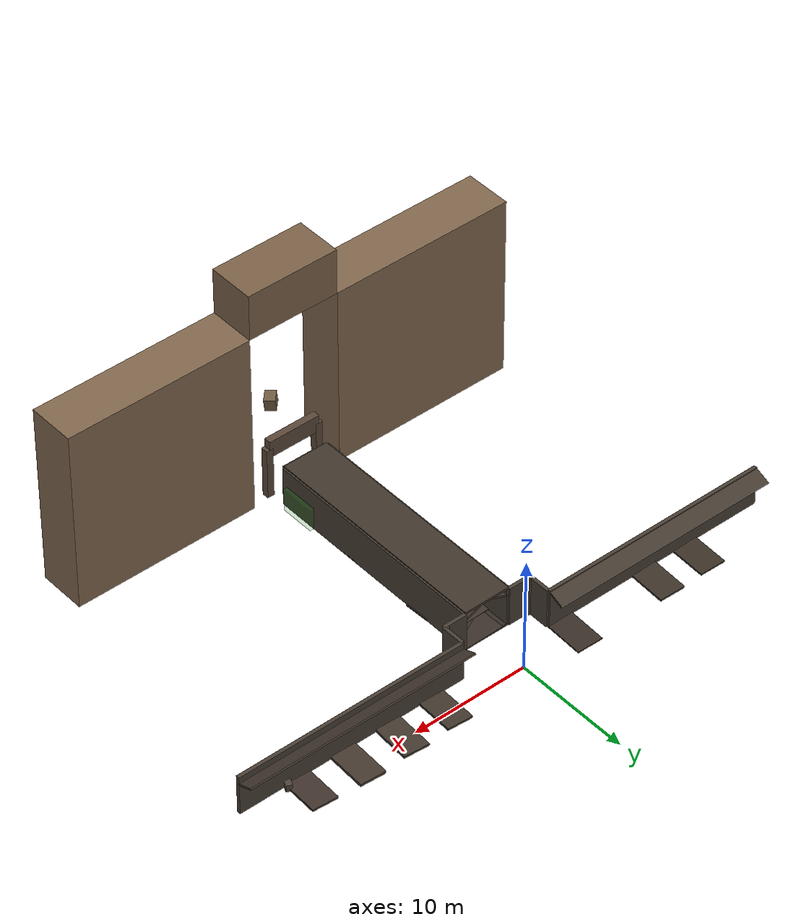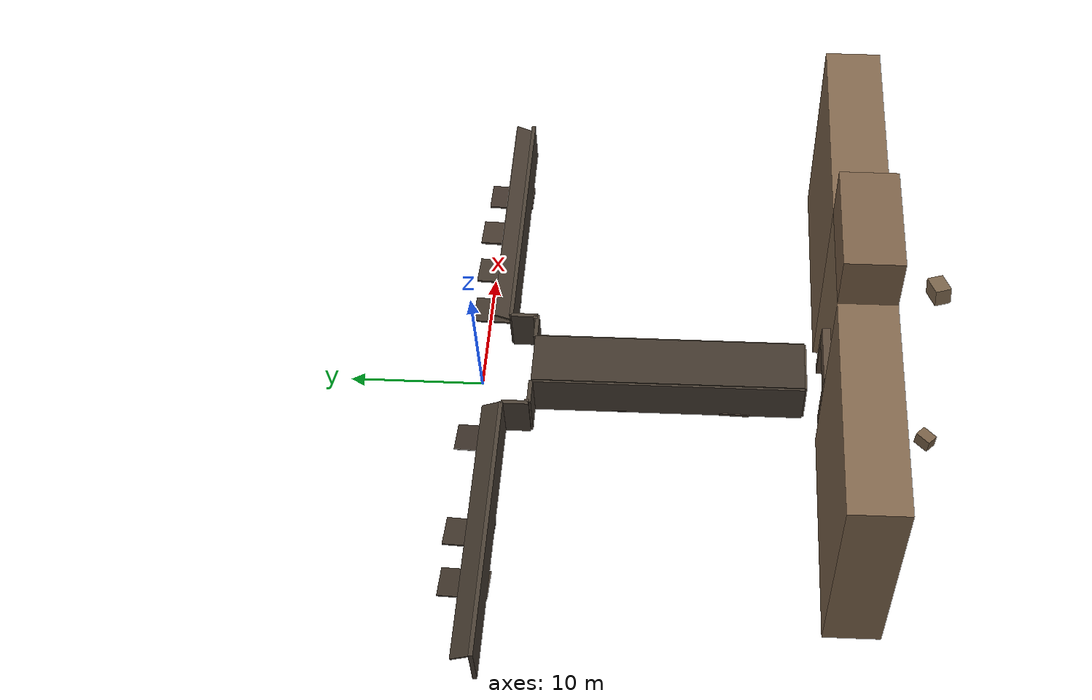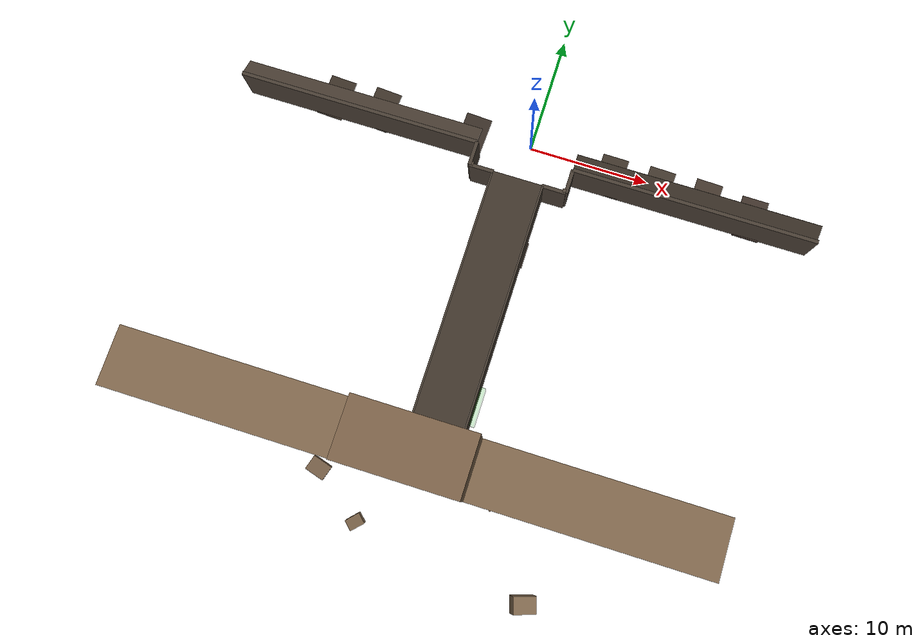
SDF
<sdf version="1.8">
 <world name="default">
  <model name="cliff_s_left">
   <static>true</static>
   <pose>-12 -27 8 0 0 0</pose>
   <link name="l">
    <collision name="c"><geometry><box><size>16 4 16</size></box></geometry></collision>
    <visual name="v">
     <geometry><box><size>16 4 16</size></box></geometry>
     <material><ambient>0.50 0.40 0.30 1</ambient><diffuse>0.50 0.40 0.30 1</diffuse></material>
    </visual>
   </link>
  </model>
  <model name="cliff_s_right">
   <static>true</static>
   <pose>12 -27 8 0 0 0</pose>
   <link name="l">
    <collision name="c"><geometry><box><size>16 4 16</size></box></geometry></collision>
    <visual name="v">
     <geometry><box><size>16 4 16</size></box></geometry>
     <material><ambient>0.50 0.40 0.30 1</ambient><diffuse>0.50 0.40 0.30 1</diffuse></material>
    </visual>
   </link>
  </model>
  <model name="cliff_s_top">
   <static>true</static>
   <pose>0 -27 18 0 0 0</pose>
   <link name="l">
    <collision name="c"><geometry><box><size>8 4 4</size></box></geometry></collision>
    <visual name="v">
     <geometry><box><size>8 4 4</size></box></geometry>
     <material><ambient>0.48 0.38 0.28 1</ambient><diffuse>0.48 0.38 0.28 1</diffuse></material>
    </visual>
   </link>
  </model>
  <model name="portal_lintel">
   <static>true</static>
   <pose>0 -25.5 4.5 0 0 0</pose>
   <link name="l">
    <collision name="c"><geometry><box><size>4.6 0.6 1.5</size></box></geometry></collision>
    <visual name="v">
     <geometry><box><size>4.6 0.6 1.5</size></box></geometry>
     <material><ambient>0.35 0.28 0.22 1</ambient><diffuse>0.35 0.28 0.22 1</diffuse></material>
    </visual>
   </link>
  </model>
  <model name="portal_pillar_l">
   <static>true</static>
   <pose>-2.3 -25.5 2.25 0 0 0</pose>
   <link name="l">
    <collision name="c"><geometry><box><size>0.6 0.6 4.5</size></box></geometry></collision>
    <visual name="v">
     <geometry><box><size>0.6 0.6 4.5</size></box></geometry>
     <material><ambient>0.35 0.28 0.22 1</ambient><diffuse>0.35 0.28 0.22 1</diffuse></material>
    </visual>
   </link>
  </model>
  <model name="portal_pillar_r">
   <static>true</static>
   <pose>2.3 -25.5 2.25 0 0 0</pose>
   <link name="l">
    <collision name="c"><geometry><box><size>0.6 0.6 4.5</size></box></geometry></collision>
    <visual name="v">
     <geometry><box><size>0.6 0.6 4.5</size></box></geometry>
     <material><ambient>0.35 0.28 0.22 1</ambient><diffuse>0.35 0.28 0.22 1</diffuse></material>
    </visual>
   </link>
  </model>
  <model name="boulder_1">
   <static>true</static>
   <pose>6 -28 0.8 0.2 0 0.5</pose>
   <link name="l">
    <collision name="c"><geometry><box><size>2.0 1.5 1.6</size></box></geometry></collision>
    <visual name="v">
     <geometry><box><size>2.0 1.5 1.6</size></box></geometry>
     <material><ambient>0.48 0.39 0.29 1</ambient><diffuse>0.48 0.39 0.29 1</diffuse></material>
    </visual>
   </link>
  </model>
  <model name="boulder_2">
   <static>true</static>
   <pose>-8 -30 0.6 0 0.15 -0.3</pose>
   <link name="l">
    <collision name="c"><geometry><box><size>1.6 1.2 1.2</size></box></geometry></collision>
    <visual name="v">
     <geometry><box><size>1.6 1.2 1.2</size></box></geometry>
     <material><ambient>0.45 0.36 0.27 1</ambient><diffuse>0.45 0.36 0.27 1</diffuse></material>
    </visual>
   </link>
  </model>
  <model name="boulder_3">
   <static>true</static>
   <pose>-4 -33 0.5 0.1 0 0.8</pose>
   <link name="l">
    <collision name="c"><geometry><box><size>1.2 0.9 1.0</size></box></geometry></collision>
    <visual name="v">
     <geometry><box><size>1.2 0.9 1.0</size></box></geometry>
     <material><ambient>0.46 0.37 0.27 1</ambient><diffuse>0.46 0.37 0.27 1</diffuse></material>
    </visual>
   </link>
  </model>
  <model name="boulder_4">
   <static>true</static>
   <pose>10 -35 0.7 0 0.2 0.3</pose>
   <link name="l">
    <collision name="c"><geometry><box><size>1.8 1.3 1.4</size></box></geometry></collision>
    <visual name="v">
     <geometry><box><size>1.8 1.3 1.4</size></box></geometry>
     <material><ambient>0.49 0.40 0.30 1</ambient><diffuse>0.49 0.40 0.30 1</diffuse></material>
    </visual>
   </link>
  </model>
  <model name="junc_wall_s_l">
   <static>true</static>
   <pose>-3 -4 1.75 0 0 0</pose>
   <link name="l">
    <collision name="c"><geometry><box><size>2 0.3 3.5</size></box></geometry></collision>
    <visual name="v">
     <geometry><box><size>2 0.3 3.5</size></box></geometry>
     <material><ambient>0.28 0.24 0.20 1</ambient><diffuse>0.28 0.24 0.20 1</diffuse></material>
    </visual>
   </link>
  </model>
  <model name="junc_wall_s_r">
   <static>true</static>
   <pose>3 -4 1.75 0 0 0</pose>
   <link name="l">
    <collision name="c"><geometry><box><size>2 0.3 3.5</size></box></geometry></collision>
    <visual name="v">
     <geometry><box><size>2 0.3 3.5</size></box></geometry>
     <material><ambient>0.28 0.24 0.20 1</ambient><diffuse>0.28 0.24 0.20 1</diffuse></material>
    </visual>
   </link>
  </model>
  <model name="junc_wall_e_r">
   <static>true</static>
   <pose>4 -3 1.75 0 0 0</pose>
   <link name="l">
    <collision name="c"><geometry><box><size>0.3 2 3.5</size></box></geometry></collision>
    <visual name="v">
     <geometry><box><size>0.3 2 3.5</size></box></geometry>
     <material><ambient>0.28 0.24 0.20 1</ambient><diffuse>0.28 0.24 0.20 1</diffuse></material>
    </visual>
   </link>
  </model>
  <model name="junc_wall_w_r">
   <static>true</static>
   <pose>-4 -3 1.75 0 0 0</pose>
   <link name="l">
    <collision name="c"><geometry><box><size>0.3 2 3.5</size></box></geometry></collision>
    <visual name="v">
     <geometry><box><size>0.3 2 3.5</size></box></geometry>
     <material><ambient>0.28 0.24 0.20 1</ambient><diffuse>0.28 0.24 0.20 1</diffuse></material>
    </visual>
   </link>
  </model>
  <model name="junc_pillar_se">
   <static>true</static>
   <pose>3.85 -3.85 1.75 0 0 0</pose>
   <link name="l">
    <collision name="c"><geometry><box><size>0.3 0.3 3.5</size></box></geometry></collision>
    <visual name="v">
     <geometry><box><size>0.3 0.3 3.5</size></box></geometry>
     <material><ambient>0.32 0.27 0.22 1</ambient><diffuse>0.32 0.27 0.22 1</diffuse></material>
    </visual>
   </link>
  </model>
  <model name="junc_pillar_sw">
   <static>true</static>
   <pose>-3.85 -3.85 1.75 0 0 0</pose>
   <link name="l">
    <collision name="c"><geometry><box><size>0.3 0.3 3.5</size></box></geometry></collision>
    <visual name="v">
     <geometry><box><size>0.3 0.3 3.5</size></box></geometry>
     <material><ambient>0.32 0.27 0.22 1</ambient><diffuse>0.32 0.27 0.22 1</diffuse></material>
    </visual>
   </link>
  </model>
  <model name="s_floor_base">
   <static>true</static>
   <pose>0 -14 0 0 0 0</pose>
   <link name="l">
    <collision name="c"><geometry><box><size>4 20 0.2</size></box></geometry></collision>
    <visual name="v">
     <geometry><box><size>4 20 0.2</size></box></geometry>
     <material><ambient>0.20 0.17 0.14 1</ambient><diffuse>0.20 0.17 0.14 1</diffuse></material>
    </visual>
   </link>
  </model>
  <model name="s_uneven_01">
   <static>true</static>
   <pose>0.3 -5 0.06 0.04 0.02 0</pose>
   <link name="l">
    <collision name="c"><geometry><box><size>3.5 2.2 0.12</size></box></geometry></collision>
    <visual name="v">
     <geometry><box><size>3.5 2.2 0.12</size></box></geometry>
     <material><ambient>0.23 0.19 0.16 1</ambient><diffuse>0.23 0.19 0.16 1</diffuse></material>
    </visual>
   </link>
  </model>
  <model name="s_uneven_02">
   <static>true</static>
   <pose>-0.2 -7 0.08 -0.03 0.04 0</pose>
   <link name="l">
    <collision name="c"><geometry><box><size>3.5 2.2 0.16</size></box></geometry></collision>
    <visual name="v">
     <geometry><box><size>3.5 2.2 0.16</size></box></geometry>
     <material><ambient>0.24 0.20 0.16 1</ambient><diffuse>0.24 0.20 0.16 1</diffuse></material>
    </visual>
   </link>
  </model>
  <model name="s_uneven_03">
   <static>true</static>
   <pose>0.5 -9 0.05 0.05 -0.03 0</pose>
   <link name="l">
    <collision name="c"><geometry><box><size>3.5 2.2 0.10</size></box></geometry></collision>
    <visual name="v">
     <geometry><box><size>3.5 2.2 0.10</size></box></geometry>
     <material><ambient>0.22 0.18 0.15 1</ambient><diffuse>0.22 0.18 0.15 1</diffuse></material>
    </visual>
   </link>
  </model>
  <model name="s_uneven_04">
   <static>true</static>
   <pose>-0.4 -11 0.09 -0.04 0.05 0</pose>
   <link name="l">
    <collision name="c"><geometry><box><size>3.5 2.2 0.18</size></box></geometry></collision>
    <visual name="v">
     <geometry><box><size>3.5 2.2 0.18</size></box></geometry>
     <material><ambient>0.25 0.21 0.17 1</ambient><diffuse>0.25 0.21 0.17 1</diffuse></material>
    </visual>
   </link>
  </model>
  <model name="s_uneven_05">
   <static>true</static>
   <pose>0.2 -13 0.07 0.03 -0.04 0</pose>
   <link name="l">
    <collision name="c"><geometry><box><size>3.5 2.2 0.14</size></box></geometry></collision>
    <visual name="v">
     <geometry><box><size>3.5 2.2 0.14</size></box></geometry>
     <material><ambient>0.23 0.19 0.15 1</ambient><diffuse>0.23 0.19 0.15 1</diffuse></material>
    </visual>
   </link>
  </model>
  <model name="s_uneven_06">
   <static>true</static>
   <pose>-0.3 -15 0.10 0.05 0.03 0</pose>
   <link name="l">
    <collision name="c"><geometry><box><size>3.5 2.2 0.20</size></box></geometry></collision>
    <visual name="v">
     <geometry><box><size>3.5 2.2 0.20</size></box></geometry>
     <material><ambient>0.26 0.22 0.18 1</ambient><diffuse>0.26 0.22 0.18 1</diffuse></material>
    </visual>
   </link>
  </model>
  <model name="s_uneven_07">
   <static>true</static>
   <pose>0.4 -17 0.06 -0.03 -0.05 0</pose>
   <link name="l">
    <collision name="c"><geometry><box><size>3.5 2.2 0.12</size></box></geometry></collision>
    <visual name="v">
     <geometry><box><size>3.5 2.2 0.12</size></box></geometry>
     <material><ambient>0.22 0.18 0.15 1</ambient><diffuse>0.22 0.18 0.15 1</diffuse></material>
    </visual>
   </link>
  </model>
  <model name="s_uneven_08">
   <static>true</static>
   <pose>-0.5 -19 0.11 0.04 0.04 0</pose>
   <link name="l">
    <collision name="c"><geometry><box><size>3.5 2.2 0.22</size></box></geometry></collision>
    <visual name="v">
     <geometry><box><size>3.5 2.2 0.22</size></box></geometry>
     <material><ambient>0.27 0.22 0.18 1</ambient><diffuse>0.27 0.22 0.18 1</diffuse></material>
    </visual>
   </link>
  </model>
  <model name="s_uneven_09">
   <static>true</static>
   <pose>0.1 -21 0.07 -0.05 0.02 0</pose>
   <link name="l">
    <collision name="c"><geometry><box><size>3.5 2.2 0.14</size></box></geometry></collision>
    <visual name="v">
     <geometry><box><size>3.5 2.2 0.14</size></box></geometry>
     <material><ambient>0.23 0.19 0.16 1</ambient><diffuse>0.23 0.19 0.16 1</diffuse></material>
    </visual>
   </link>
  </model>
  <model name="s_uneven_10">
   <static>true</static>
   <pose>-0.2 -23 0.08 0.03 -0.03 0</pose>
   <link name="l">
    <collision name="c"><geometry><box><size>3.5 2.2 0.16</size></box></geometry></collision>
    <visual name="v">
     <geometry><box><size>3.5 2.2 0.16</size></box></geometry>
     <material><ambient>0.24 0.20 0.16 1</ambient><diffuse>0.24 0.20 0.16 1</diffuse></material>
    </visual>
   </link>
  </model>
  <model name="s_wall_l">
   <static>true</static>
   <pose>-2 -14 1.75 0 0 0</pose>
   <link name="l">
    <collision name="c"><geometry><box><size>0.3 20 3.5</size></box></geometry></collision>
    <visual name="v">
     <geometry><box><size>0.3 20 3.5</size></box></geometry>
     <material><ambient>0.28 0.24 0.20 1</ambient><diffuse>0.28 0.24 0.20 1</diffuse></material>
    </visual>
   </link>
  </model>
  <model name="s_wall_r">
   <static>true</static>
   <pose>2 -14 1.75 0 0 0</pose>
   <link name="l">
    <collision name="c"><geometry><box><size>0.3 20 3.5</size></box></geometry></collision>
    <visual name="v">
     <geometry><box><size>0.3 20 3.5</size></box></geometry>
     <material><ambient>0.28 0.24 0.20 1</ambient><diffuse>0.28 0.24 0.20 1</diffuse></material>
    </visual>
   </link>
  </model>
  <model name="s_ceil">
   <static>true</static>
   <pose>0 -14 3.5 0 0 0</pose>
   <link name="l">
    <collision name="c"><geometry><box><size>4 20 0.2</size></box></geometry></collision>
    <visual name="v">
     <geometry><box><size>4 20 0.2</size></box></geometry>
     <material><ambient>0.25 0.21 0.17 1</ambient><diffuse>0.25 0.21 0.17 1</diffuse></material>
    </visual>
   </link>
  </model>
  <model name="s_arch_l">
   <static>true</static>
   <pose>-1.3 -14 3.1 0 -0.4 0</pose>
   <link name="l">
    <collision name="c"><geometry><box><size>1.5 20 0.15</size></box></geometry></collision>
    <visual name="v">
     <geometry><box><size>1.5 20 0.15</size></box></geometry>
     <material><ambient>0.26 0.22 0.18 1</ambient><diffuse>0.26 0.22 0.18 1</diffuse></material>
    </visual>
   </link>
  </model>
  <model name="s_arch_r">
   <static>true</static>
   <pose>1.3 -14 3.1 0 0.4 0</pose>
   <link name="l">
    <collision name="c"><geometry><box><size>1.5 20 0.15</size></box></geometry></collision>
    <visual name="v">
     <geometry><box><size>1.5 20 0.15</size></box></geometry>
     <material><ambient>0.26 0.22 0.18 1</ambient><diffuse>0.26 0.22 0.18 1</diffuse></material>
    </visual>
   </link>
  </model>
  <model name="s_cap">
   <static>true</static>
   <pose>0 -24 1.75 0 0 0</pose>
   <link name="l">
    <collision name="c"><geometry><box><size>4 0.3 3.5</size></box></geometry></collision>
    <visual name="v">
     <geometry><box><size>4 0.3 3.5</size></box></geometry>
     <material><ambient>0.30 0.25 0.20 1</ambient><diffuse>0.30 0.25 0.20 1</diffuse></material>
    </visual>
   </link>
  </model>
  <model name="s_rock_l1">
   <static>true</static>
   <pose>-1.6 -12 0.30 0 0 0.3</pose>
   <link name="l">
    <collision name="c"><geometry><box><size>0.6 0.5 0.6</size></box></geometry></collision>
    <visual name="v">
     <geometry><box><size>0.6 0.5 0.6</size></box></geometry>
     <material><ambient>0.33 0.28 0.22 1</ambient><diffuse>0.33 0.28 0.22 1</diffuse></material>
    </visual>
   </link>
  </model>
  <model name="s_rock_r1">
   <static>true</static>
   <pose>1.6 -17 0.25 0 0 -0.2</pose>
   <link name="l">
    <collision name="c"><geometry><box><size>0.5 0.7 0.5</size></box></geometry></collision>
    <visual name="v">
     <geometry><box><size>0.5 0.7 0.5</size></box></geometry>
     <material><ambient>0.31 0.26 0.21 1</ambient><diffuse>0.31 0.26 0.21 1</diffuse></material>
    </visual>
   </link>
  </model>
  <model name="s_rock_l2">
   <static>true</static>
   <pose>-1.5 -20 0.20 0.1 0 0.5</pose>
   <link name="l">
    <collision name="c"><geometry><box><size>0.4 0.5 0.4</size></box></geometry></collision>
    <visual name="v">
     <geometry><box><size>0.4 0.5 0.4</size></box></geometry>
     <material><ambient>0.34 0.29 0.23 1</ambient><diffuse>0.34 0.29 0.23 1</diffuse></material>
    </visual>
   </link>
  </model>
  <model name="e_uneven_02">
   <static>true</static>
   <pose>7 -0.4 0.09 0 -0.05 -0.03</pose>
   <link name="l">
    <collision name="c"><geometry><box><size>2.2 3.5 0.18</size></box></geometry></collision>
    <visual name="v">
     <geometry><box><size>2.2 3.5 0.18</size></box></geometry>
     <material><ambient>0.25 0.21 0.17 1</ambient><diffuse>0.25 0.21 0.17 1</diffuse></material>
    </visual>
   </link>
  </model>
  <model name="e_uneven_04">
   <static>true</static>
   <pose>11 -0.3 0.10 0 -0.04 -0.05</pose>
   <link name="l">
    <collision name="c"><geometry><box><size>2.2 3.5 0.20</size></box></geometry></collision>
    <visual name="v">
     <geometry><box><size>2.2 3.5 0.20</size></box></geometry>
     <material><ambient>0.26 0.22 0.18 1</ambient><diffuse>0.26 0.22 0.18 1</diffuse></material>
    </visual>
   </link>
  </model>
  <model name="e_uneven_06">
   <static>true</static>
   <pose>15 -0.2 0.11 0 -0.03 -0.04</pose>
   <link name="l">
    <collision name="c"><geometry><box><size>2.2 3.5 0.22</size></box></geometry></collision>
    <visual name="v">
     <geometry><box><size>2.2 3.5 0.22</size></box></geometry>
     <material><ambient>0.27 0.22 0.18 1</ambient><diffuse>0.27 0.22 0.18 1</diffuse></material>
    </visual>
   </link>
  </model>
  <model name="e_uneven_08">
   <static>true</static>
   <pose>19 -0.5 0.09 0 -0.05 -0.03</pose>
   <link name="l">
    <collision name="c"><geometry><box><size>2.2 3.5 0.18</size></box></geometry></collision>
    <visual name="v">
     <geometry><box><size>2.2 3.5 0.18</size></box></geometry>
     <material><ambient>0.25 0.20 0.17 1</ambient><diffuse>0.25 0.20 0.17 1</diffuse></material>
    </visual>
   </link>
  </model>
  <model name="e_wall_l">
   <static>true</static>
   <pose>14 -2 1.75 0 0 0</pose>
   <link name="l">
    <collision name="c"><geometry><box><size>20 0.3 3.5</size></box></geometry></collision>
    <visual name="v">
     <geometry><box><size>20 0.3 3.5</size></box></geometry>
     <material><ambient>0.28 0.24 0.20 1</ambient><diffuse>0.28 0.24 0.20 1</diffuse></material>
    </visual>
   </link>
  </model>
  <model name="e_arch_l">
   <static>true</static>
   <pose>14 -1.3 3.1 0.4 0 0</pose>
   <link name="l">
    <collision name="c"><geometry><box><size>20 1.5 0.15</size></box></geometry></collision>
    <visual name="v">
     <geometry><box><size>20 1.5 0.15</size></box></geometry>
     <material><ambient>0.26 0.22 0.18 1</ambient><diffuse>0.26 0.22 0.18 1</diffuse></material>
    </visual>
   </link>
  </model>
  <model name="e_rock_l1">
   <static>true</static>
   <pose>20 -1.6 0.30 0 0 -0.4</pose>
   <link name="l">
    <collision name="c"><geometry><box><size>0.5 0.6 0.60</size></box></geometry></collision>
    <visual name="v">
     <geometry><box><size>0.5 0.6 0.60</size></box></geometry>
     <material><ambient>0.31 0.26 0.21 1</ambient><diffuse>0.31 0.26 0.21 1</diffuse></material>
    </visual>
   </link>
  </model>
  <model name="w_uneven_01">
   <static>true</static>
   <pose>-5 -0.3 0.06 0 0.03 -0.04</pose>
   <link name="l">
    <collision name="c"><geometry><box><size>2.2 3.5 0.12</size></box></geometry></collision>
    <visual name="v">
     <geometry><box><size>2.2 3.5 0.12</size></box></geometry>
     <material><ambient>0.22 0.18 0.15 1</ambient><diffuse>0.22 0.18 0.15 1</diffuse></material>
    </visual>
   </link>
  </model>
  <model name="w_uneven_05">
   <static>true</static>
   <pose>-13 -0.4 0.08 0 0.04 -0.05</pose>
   <link name="l">
    <collision name="c"><geometry><box><size>2.2 3.5 0.16</size></box></geometry></collision>
    <visual name="v">
     <geometry><box><size>2.2 3.5 0.16</size></box></geometry>
     <material><ambient>0.24 0.20 0.16 1</ambient><diffuse>0.24 0.20 0.16 1</diffuse></material>
    </visual>
   </link>
  </model>
  <model name="w_uneven_07">
   <static>true</static>
   <pose>-17 -0.5 0.07 0 0.03 -0.04</pose>
   <link name="l">
    <collision name="c"><geometry><box><size>2.2 3.5 0.14</size></box></geometry></collision>
    <visual name="v">
     <geometry><box><size>2.2 3.5 0.14</size></box></geometry>
     <material><ambient>0.23 0.19 0.15 1</ambient><diffuse>0.23 0.19 0.15 1</diffuse></material>
    </visual>
   </link>
  </model>
  <model name="w_wall_r">
   <static>true</static>
   <pose>-14 -2 1.75 0 0 0</pose>
   <link name="l">
    <collision name="c"><geometry><box><size>20 0.3 3.5</size></box></geometry></collision>
    <visual name="v">
     <geometry><box><size>20 0.3 3.5</size></box></geometry>
     <material><ambient>0.28 0.24 0.20 1</ambient><diffuse>0.28 0.24 0.20 1</diffuse></material>
    </visual>
   </link>
  </model>
  <model name="w_arch_r">
   <static>true</static>
   <pose>-14 -1.3 3.1 -0.4 0 0</pose>
   <link name="l">
    <collision name="c"><geometry><box><size>20 1.5 0.15</size></box></geometry></collision>
    <visual name="v">
     <geometry><box><size>20 1.5 0.15</size></box></geometry>
     <material><ambient>0.26 0.22 0.18 1</ambient><diffuse>0.26 0.22 0.18 1</diffuse></material>
    </visual>
   </link>
  </model>
  <model name="rail_l">
   <static>true</static>
   <pose>-0.5 -14 0.06 0 0 0</pose>
   <link name="l">
    <collision name="c"><geometry><box><size>0.08 20 0.08</size></box></geometry></collision>
    <visual name="v">
     <geometry><box><size>0.08 20 0.08</size></box></geometry>
     <material>
      <ambient>0.45 0.43 0.40 1</ambient>
      <diffuse>0.45 0.43 0.40 1</diffuse>
      <specular>0.7 0.7 0.7 1</specular>
     </material>
    </visual>
   </link>
  </model>
  <model name="rail_r">
   <static>true</static>
   <pose>0.5 -14 0.06 0 0 0</pose>
   <link name="l">
    <collision name="c"><geometry><box><size>0.08 20 0.08</size></box></geometry></collision>
    <visual name="v">
     <geometry><box><size>0.08 20 0.08</size></box></geometry>
     <material>
      <ambient>0.45 0.43 0.40 1</ambient>
      <diffuse>0.45 0.43 0.40 1</diffuse>
      <specular>0.7 0.7 0.7 1</specular>
     </material>
    </visual>
   </link>
  </model>
  <model name="crack_C2">
   <static>true</static>
   <pose>-1.95 -8 1.4 0 0 0</pose>
   <link name="l">
    <visual name="v">
     <geometry><box><size>0.02 1.5 0.8</size></box></geometry>
     <material><ambient>0.55 0.08 0.08 1</ambient><diffuse>0.55 0.08 0.08 1</diffuse></material>
    </visual>
   </link>
  </model>
  <model name="crack_C5">
   <static>true</static>
   <pose>0.5 -20 3.45 0 0 0</pose>
   <link name="l">
    <visual name="v">
     <geometry><box><size>1.2 1.2 0.02</size></box></geometry>
     <material><ambient>0.55 0.08 0.08 1</ambient><diffuse>0.55 0.08 0.08 1</diffuse></material>
    </visual>
   </link>
  </model>
  <model name="gas_G1">
   <static>true</static>
   <pose>1.0 -22 1.0 0 0 0</pose>
   <link name="l">
    <visual name="v">
     <geometry><box><size>3.0 3.0 2.0</size></box></geometry>
     <material><ambient>0.05 0.65 0.05 0.2</ambient><diffuse>0.05 0.65 0.05 0.2</diffuse></material>
     <transparency>0.8</transparency>
    </visual>
   </link>
  </model>
 </world>
</sdf>
